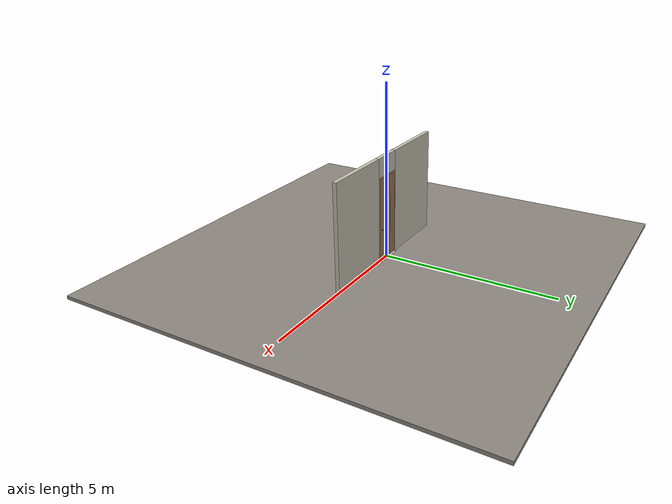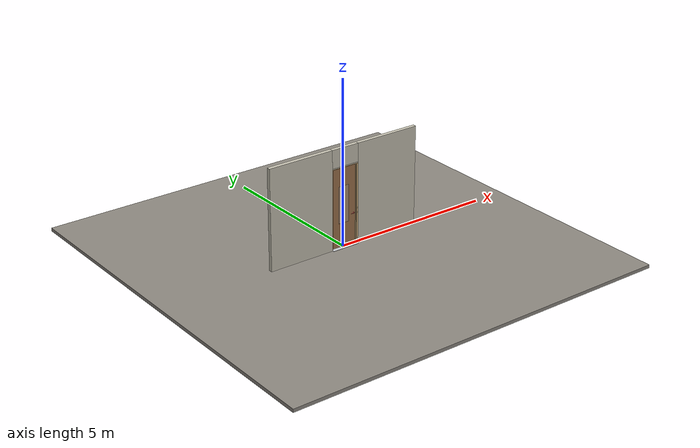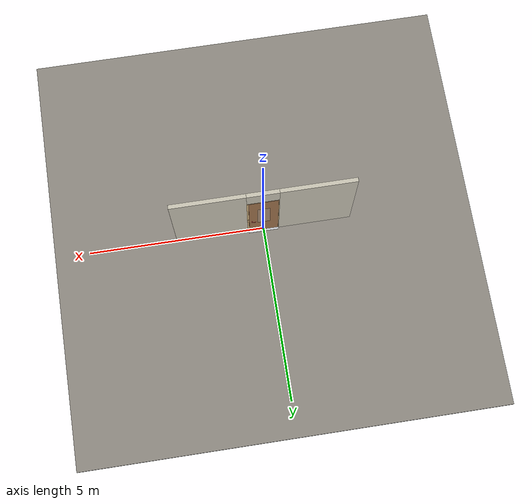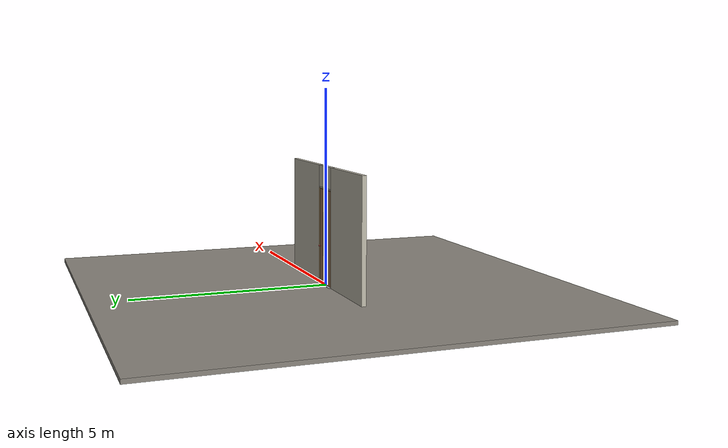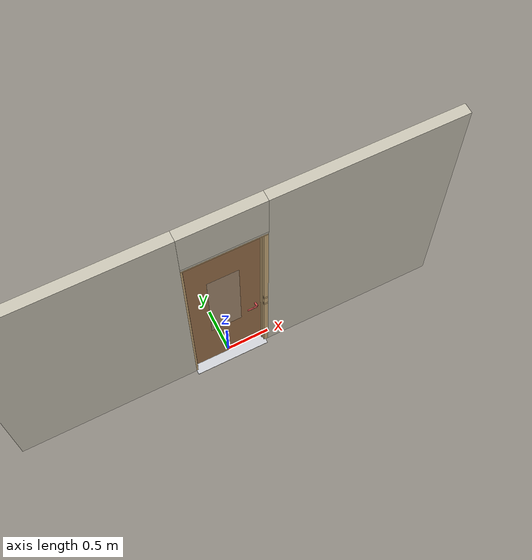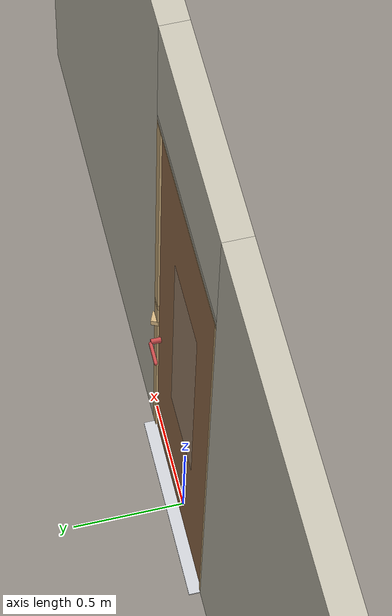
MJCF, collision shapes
<?xml version="1.0" ?>
<mujoco model="db0948_swing_single_minimal">
  <compiler angle="radian" meshdir="../../hardware" texturedir="../../textures" autolimits="true" inertiafromgeom="false"/>
  <option timestep="0.002" integrator="implicitfast" cone="elliptic" impratio="10" noslip_iterations="3">
    <flag multiccd="enable"/>
  </option>
  <size memory="16M"/>
  <default>
    <geom condim="4" solref="0.005 1" solimp="0.95 0.99 0.001"/>
    <joint solreflimit="0.005 1" solimplimit="0.95 0.99 0.001"/>
    <tendon solreflimit="0.005 1"/>
    <equality solref="0.002 1"/>
  </default>
  <visual>
    <headlight ambient="0.4 0.4 0.4" diffuse="0.7 0.7 0.7" specular="0.2 0.2 0.2"/>
    <quality shadowsize="4096"/>
    <map znear="0.01" zfar="60"/>
  </visual>
  <asset>
    <mesh name="lever_748f08efca" file="lever_748f08efca.obj"/>
    <material name="mat_floor" rgba="0.55 0.53 0.5 1" specular="0.2" shininess="0.15" reflectance="0"/>
    <material name="mat_wall" rgba="0.78 0.76 0.7 1" specular="0.2" shininess="0.1" reflectance="0"/>
    <material name="mat_leaf" rgba="0.62 0.45 0.3 1" specular="0.2" shininess="0.5" reflectance="0"/>
    <material name="mat_glass" rgba="0.85 0.92 0.95 0.25" specular="0.2" shininess="0.95" reflectance="0.1"/>
    <material name="mat_hinge" rgba="0.65 0.66 0.68 1" specular="0.74" shininess="0.5" reflectance="0.36"/>
    <material name="mat_op_chrome" rgba="0.9 0.9 0.92 1" specular="0.8" shininess="0.9" reflectance="0.4"/>
    <material name="mat_trim" rgba="0.85 0.66 0.3 1" specular="0.8" shininess="0.75" reflectance="0.4"/>
    <material name="mat_bolt" rgba="0.85 0.66 0.3 1" specular="0.8" shininess="0.75" reflectance="0.4"/>
    <material name="mat_deadbolt" rgba="0.85 0.66 0.3 1" specular="0.8" shininess="0.75" reflectance="0.4"/>
    <material name="mat_frame" rgba="0.82 0.7 0.5 1" specular="0.2" shininess="0.45" reflectance="0"/>
    <material name="mat_seal" rgba="0.1 0.1 0.1 1" specular="0.2" shininess="0.1" reflectance="0"/>
    <material name="mat_threshold" rgba="0.8 0.81 0.83 1" specular="0.8" shininess="0.6" reflectance="0.4"/>
    <material name="mat_kick" rgba="0.75 0.76 0.77 1" specular="0.8" shininess="0.65" reflectance="0.4"/>
    <texture name="skybox" type="skybox" builtin="gradient" rgb1="0.6 0.7 0.85" rgb2="0.9 0.92 0.95" width="256" height="256"/>
  </asset>
  <worldbody>
    <light name="sun" pos="1.5 -2.5 4" dir="-0.3 0.5 -0.8" directional="true" diffuse="0.8 0.8 0.8" specular="0.3 0.3 0.3" castshadow="true"/>
    <light name="fill" pos="-1.5 2.5 3" dir="0.3 -0.5 -0.7" directional="true" diffuse="0.35 0.35 0.4" castshadow="false"/>
    <camera name="robot_view" pos="0 -2.951313 2.043887" xyaxes="1 0 0 0 0.26963 0.962964" fovy="52"/>
    <camera name="far_view" pos="0 2.894312 2.043887" xyaxes="-1 0 0 0 -0.26963 0.962964" fovy="52"/>
    <camera name="iso" pos="2.221337 -2.483663 2.511538" xyaxes="0.741536 0.670913 0 -0.242917 0.268487 0.932151" fovy="46"/>
    <camera name="detail_handle" pos="0.4259 -0.877 1.245" xyaxes="0.97561 0.219512 0 -0.070934 0.315262 0.94635" fovy="38"/>
    <geom name="floor" type="box" size="6 6 0.05" pos="0 0 -0.05" material="mat_floor" group="0" contype="1" conaffinity="1" friction="0.8 0.005 0.0001" density="2400"/>
    <geom name="wall_left" type="box" size="1.03525 0.0575 1.5255" pos="-1.46475 -0.0285 1.5255" material="mat_wall" group="0" contype="1" conaffinity="1" friction="0.6 0.005 0.0001" density="800"/>
    <geom name="wall_right" type="box" size="1.02025 0.0575 1.5255" pos="1.47975 -0.0285 1.5255" material="mat_wall" group="0" contype="1" conaffinity="1" friction="0.6 0.005 0.0001" density="800"/>
    <geom name="wall_header" type="box" size="0.4445 0.0575 0.2755" pos="0.015 -0.0285 2.7755" material="mat_wall" group="0" contype="1" conaffinity="1" friction="0.6 0.005 0.0001" density="800"/>
    <geom name="jamb_hinge" type="box" size="0.0095 0.0575 1.2255" pos="-0.42 -0.0285 1.2255" material="mat_frame" group="0" contype="1" conaffinity="1" friction="0.6 0.005 0.0001" density="400"/>
    <geom name="strike_965_wall_n" type="box" size="0.0245 0.039075 0.0167" pos="0.435 -0.046925 0.965" material="mat_frame" group="0" contype="1" conaffinity="1" friction="0.6 0.005 0.0001" density="400"/>
    <geom name="strike_965_wall_p" type="box" size="0.0245 0.008 0.0167" pos="0.435 0.01585 0.965" material="mat_frame" group="0" contype="1" conaffinity="1" friction="0.6 0.005 0.0001" density="400"/>
    <geom name="strike_965_ramp" type="box" size="0.0245 0.01649 0.0167" pos="0.439636 0.028673 0.965" quat="0.977148 0 0 -0.212558" material="mat_frame" group="0" contype="1" conaffinity="1" friction="0.12 0.005 0.0001" density="400"/>
    <geom name="strike_965_back" type="box" size="0.01615 0.00785 0.0167" pos="0.44335 0 0.965" material="mat_frame" group="0" contype="1" conaffinity="1" friction="0.6 0.005 0.0001" density="400"/>
    <geom name="strike_1105_wall_n" type="box" size="0.0245 0.03825 0.0155" pos="0.435 -0.04775 1.105" material="mat_frame" group="0" contype="1" conaffinity="1" friction="0.6 0.005 0.0001" density="400"/>
    <geom name="strike_1105_wall_p" type="box" size="0.0245 0.00975 0.0155" pos="0.435 0.01925 1.105" material="mat_frame" group="0" contype="1" conaffinity="1" friction="0.6 0.005 0.0001" density="400"/>
    <geom name="strike_1105_back" type="box" size="0.0098 0.0095 0.0155" pos="0.4497 0 1.105" material="mat_frame" group="0" contype="1" conaffinity="1" friction="0.6 0.005 0.0001" density="400"/>
    <geom name="jamb_strike_0" type="box" size="0.0245 0.0575 0.47415" pos="0.435 -0.0285 0.47415" material="mat_frame" group="0" contype="1" conaffinity="1" friction="0.6 0.005 0.0001" density="400"/>
    <geom name="jamb_strike_1" type="box" size="0.0245 0.0575 0.0539" pos="0.435 -0.0285 1.0356" material="mat_frame" group="0" contype="1" conaffinity="1" friction="0.6 0.005 0.0001" density="400"/>
    <geom name="jamb_strike_2" type="box" size="0.0245 0.0575 0.66525" pos="0.435 -0.0285 1.78575" material="mat_frame" group="0" contype="1" conaffinity="1" friction="0.6 0.005 0.0001" density="400"/>
    <geom name="jamb_head" type="box" size="0.4445 0.0575 0.0095" pos="0.015 -0.0285 2.4605" material="mat_frame" group="0" contype="1" conaffinity="1" friction="0.6 0.005 0.0001" density="400"/>
    <geom name="head_stud" type="box" size="0.4445 0.0575 0.015" pos="0.015 -0.0285 2.485" material="mat_wall" group="0" contype="1" conaffinity="1" friction="0.6 0.005 0.0001" density="500"/>
    <geom name="stop_hinge" type="box" size="0.0055 0.016 1.2255" pos="-0.405 -0.0385 1.2255" material="mat_frame" group="0" contype="1" conaffinity="1" friction="0.6 0.005 0.0001" density="400"/>
    <geom name="stop_strike" type="box" size="0.0055 0.016 1.2255" pos="0.405 -0.0385 1.2255" material="mat_frame" group="0" contype="1" conaffinity="1" friction="0.6 0.005 0.0001" density="400"/>
    <geom name="stop_head" type="box" size="0.4105 0.016 0.0055" pos="0 -0.0385 2.4455" material="mat_frame" group="0" contype="1" conaffinity="1" friction="0.6 0.005 0.0001" density="400"/>
    <geom name="threshold" type="box" size="0.4295 0.1075 0.004" pos="0 -0.0285 0.004" material="mat_threshold" group="0" contype="1" conaffinity="1" friction="0.6 0.005 0.0001" density="2700"/>
    <site name="approach_point" pos="0 -1.5 0" quat="1 0 0 0" size="0.05" rgba="0.2 0.9 0.2 0.5" group="4"/>
    <site name="goal_point" pos="0 1.5 0" quat="1 0 0 0" size="0.05" rgba="0.2 0.9 0.2 0.5" group="4"/>
    <site name="door_plane_center" pos="0 0 1.2255" quat="1 0 0 0" size="0.02" rgba="0.2 0.9 0.2 0.5" group="4"/>
    <body name="leaf" pos="-0.4105 0 0">
      <inertial pos="0.4095 0 1.228028" mass="57.306147" quat="-0.5 0.5 0.5 0.5" diaginertia="3.164770306 28.386115322 31.532394344"/>
      <joint name="leaf_hinge" type="hinge" axis="0 0 1" pos="0.003 0.029 0" limited="true" range="0 1.745329" solreflimit="0.02 1" damping="0.242359" frictionloss="3.136838" armature="0.02"/>
      <geom name="leaf_slab" type="box" size="0.4065 0.022 1.219" pos="0.4095 0 1.228" material="mat_leaf" group="0" contype="1" conaffinity="1" friction="0.4 0.005 0.0001" density="1"/>
      <geom name="leaf_glass_0" type="box" size="0.174075 0.0228 0.563178" pos="0.4095 0 1.303578" material="mat_glass" group="1" contype="0" conaffinity="0" density="1"/>
      <site name="leaf_edge_mid" pos="0.816 0 1.219" quat="1 0 0 0" size="0.02" rgba="0.2 0.9 0.2 0.5" group="4"/>
      <body name="leaf_handle" pos="0.746 0 0.965">
        <inertial pos="-0.025809 0 0" mass="0.794529" quat="0 0.707107 0.707107 0" diaginertia="0.001153119 0.003205607 0.004222855"/>
        <joint name="leaf_handle_hinge" type="hinge" axis="0 -1 0" limited="true" range="0 0.87" damping="0.205085" frictionloss="0.04" stiffness="0.9" springref="-0.444444" armature="0.01"/>
        <geom name="leaf_handle_lever_n" type="mesh" mesh="lever_748f08efca" pos="0 -0.022 0" quat="0.707107 0.707107 0 0" material="mat_op_chrome" group="1" contype="0" conaffinity="0" density="3000"/>
        <geom name="leaf_handle_lever_col_n" type="capsule" size="0.008 0.048" pos="-0.056 -0.077 0" quat="0.707107 0 -0.707107 0" material="mat_op_chrome" group="3" contype="1" conaffinity="1" rgba="0.8 0.3 0.3 0.25" friction="0.7 0.01 0.0001" density="3000"/>
        <geom name="leaf_handle_hub_col_n" type="cylinder" size="0.012 0.022" pos="0 -0.052 0" quat="0.707107 -0.707107 0 0" material="mat_op_chrome" group="3" contype="1" conaffinity="1" rgba="0.8 0.3 0.3 0.25" friction="0.6 0.005 0.0001" density="3000"/>
        <geom name="leaf_handle_lever_p" type="mesh" mesh="lever_748f08efca" pos="0 0.022 0" quat="-0.707107 0.707107 0 0" material="mat_op_chrome" group="1" contype="0" conaffinity="0" density="3000"/>
        <geom name="leaf_handle_lever_col_p" type="capsule" size="0.008 0.048" pos="-0.056 0.077 0" quat="0.707107 0 -0.707107 0" material="mat_op_chrome" group="3" contype="1" conaffinity="1" rgba="0.8 0.3 0.3 0.25" friction="0.7 0.01 0.0001" density="3000"/>
        <geom name="leaf_handle_hub_col_p" type="cylinder" size="0.012 0.022" pos="0 0.052 0" quat="0.707107 -0.707107 0 0" material="mat_op_chrome" group="3" contype="1" conaffinity="1" rgba="0.8 0.3 0.3 0.25" friction="0.6 0.005 0.0001" density="3000"/>
        <site name="leaf_handle_grip_n" pos="-0.0896 -0.077 0" quat="1 0 0 0" size="0.012" rgba="0.2 0.9 0.2 0.5" group="4"/>
        <site name="leaf_handle_grip_p" pos="-0.0896 0.077 0" quat="1 0 0 0" size="0.012" rgba="0.2 0.9 0.2 0.5" group="4"/>
      </body>
      <body name="leaf_latch_bolt" pos="0.816 0 0.965">
        <inertial pos="-0.00865 0 0" mass="0.041419" quat="0.92388 -0.382683 0 0" diaginertia="0.000000798 0.000005598 0.000005598"/>
        <joint name="leaf_latch_bolt_slide" type="slide" axis="-1 0 0" limited="true" range="0 0.0127" damping="2" frictionloss="0.3" stiffness="300" springref="-0.008333" armature="0.1"/>
        <geom name="leaf_latch_bolt_capsule" type="capsule" size="0.00635 0.015" pos="-0.00865 0 0" quat="0.707107 0 0.707107 0" material="mat_bolt" group="0" contype="1" conaffinity="1" friction="0.2 0.005 0.0001" density="8500"/>
      </body>
    </body>
  </worldbody>
  <tendon>
    <fixed name="leaf_latch_bolt_coupling" limited="true" range="0 10">
      <joint joint="leaf_latch_bolt_slide" coef="1"/>
      <joint joint="leaf_handle_hinge" coef="-0.016076"/>
    </fixed>
  </tendon>
  <sensor>
    <jointpos name="leaf_hinge_pos" joint="leaf_hinge"/>
    <jointvel name="leaf_hinge_vel" joint="leaf_hinge"/>
    <jointpos name="leaf_handle_hinge_pos" joint="leaf_handle_hinge"/>
    <jointvel name="leaf_handle_hinge_vel" joint="leaf_handle_hinge"/>
    <jointpos name="leaf_latch_bolt_slide_pos" joint="leaf_latch_bolt_slide"/>
    <jointvel name="leaf_latch_bolt_slide_vel" joint="leaf_latch_bolt_slide"/>
  </sensor>
</mujoco>
